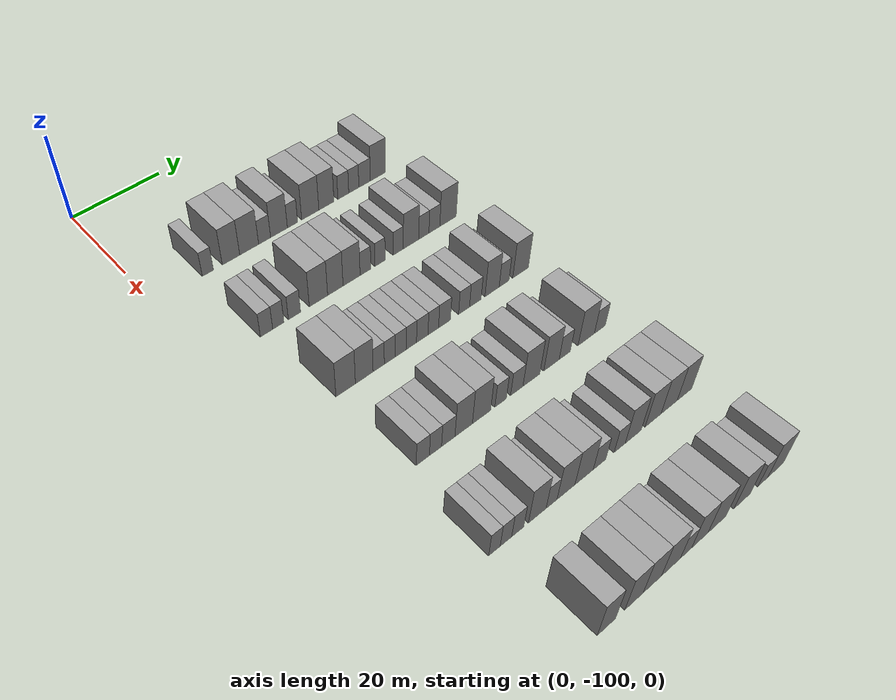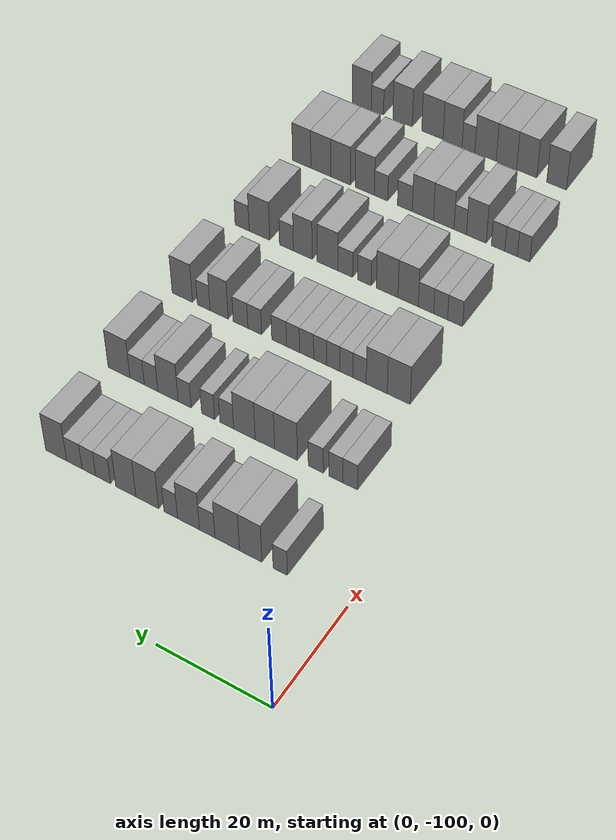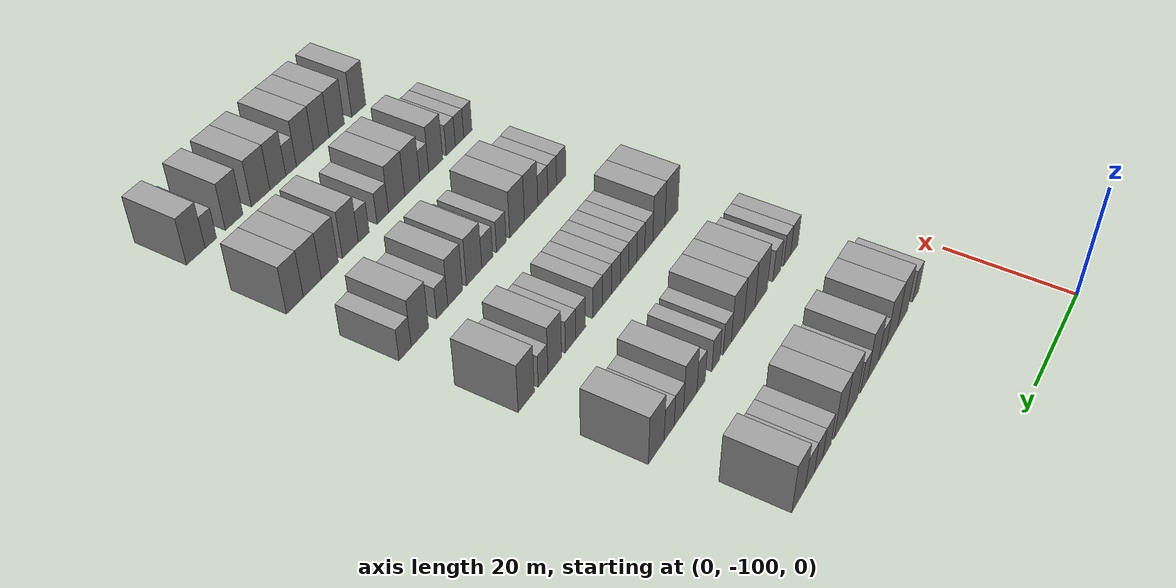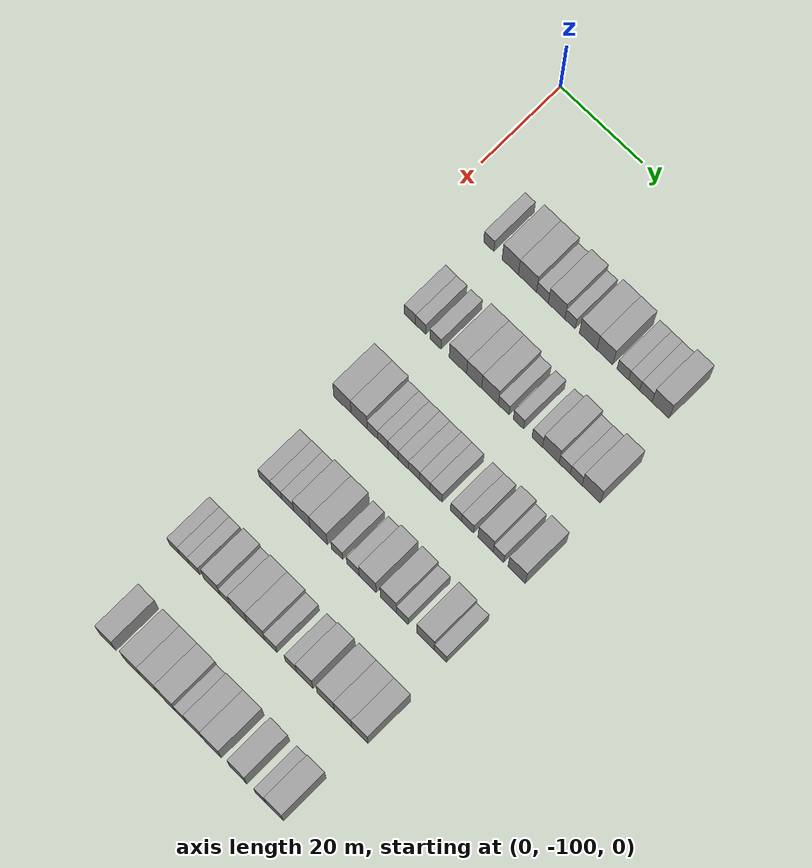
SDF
<sdf version="1.6">
 <world name="default">
  <model name="building_59">
   <static>1</static>
   <pose>25.0000 -88.2660 0 0.000000 0.000000 0.000000</pose>
   <link name="link">
    <pose>0 0 3.00 0 0 0</pose>
    <collision name="collision"><geometry><box><size>10.0000 2.4998 6.0000</size></box></geometry></collision>
    <visual name="visual">
     <cast_shadows>0</cast_shadows>
     <geometry><box><size>10.0000 2.4998 6.0000</size></box></geometry>
     <material>
      <script>
       <uri>model://grey_wall/materials/scripts</uri>
       <uri>model://grey_wall/materials/textures</uri>
       <name>vrc/grey_wall</name>
      </script>
     </material>
    </visual>
   </link>
  </model>
  <model name="building_60">
   <static>1</static>
   <pose>25.0000 -83.0185 0 0.000000 0.000000 0.000000</pose>
   <link name="link">
    <pose>0 0 4.50 0 0 0</pose>
    <collision name="collision"><geometry><box><size>10.0000 3.9951 9.0000</size></box></geometry></collision>
    <visual name="visual">
     <cast_shadows>0</cast_shadows>
     <geometry><box><size>10.0000 3.9951 9.0000</size></box></geometry>
     <material>
      <script>
       <uri>model://grey_wall/materials/scripts</uri>
       <uri>model://grey_wall/materials/textures</uri>
       <name>vrc/grey_wall</name>
      </script>
     </material>
    </visual>
   </link>
  </model>
  <model name="building_61">
   <static>1</static>
   <pose>25.0000 -78.8180 0 0.000000 0.000000 0.000000</pose>
   <link name="link">
    <pose>0 0 4.50 0 0 0</pose>
    <collision name="collision"><geometry><box><size>10.0000 4.4060 9.0000</size></box></geometry></collision>
    <visual name="visual">
     <cast_shadows>0</cast_shadows>
     <geometry><box><size>10.0000 4.4060 9.0000</size></box></geometry>
     <material>
      <script>
       <uri>model://grey_wall/materials/scripts</uri>
       <uri>model://grey_wall/materials/textures</uri>
       <name>vrc/grey_wall</name>
      </script>
     </material>
    </visual>
   </link>
  </model>
  <model name="building_62">
   <static>1</static>
   <pose>25.0000 -75.1995 0 0.000000 0.000000 0.000000</pose>
   <link name="link">
    <pose>0 0 3.00 0 0 0</pose>
    <collision name="collision"><geometry><box><size>10.0000 2.8310 6.0000</size></box></geometry></collision>
    <visual name="visual">
     <cast_shadows>0</cast_shadows>
     <geometry><box><size>10.0000 2.8310 6.0000</size></box></geometry>
     <material>
      <script>
       <uri>model://grey_wall/materials/scripts</uri>
       <uri>model://grey_wall/materials/textures</uri>
       <name>vrc/grey_wall</name>
      </script>
     </material>
    </visual>
   </link>
  </model>
  <model name="building_63">
   <static>1</static>
   <pose>25.0000 -71.7658 0 0.000000 0.000000 0.000000</pose>
   <link name="link">
    <pose>0 0 4.50 0 0 0</pose>
    <collision name="collision"><geometry><box><size>10.0000 4.0365 9.0000</size></box></geometry></collision>
    <visual name="visual">
     <cast_shadows>0</cast_shadows>
     <geometry><box><size>10.0000 4.0365 9.0000</size></box></geometry>
     <material>
      <script>
       <uri>model://grey_wall/materials/scripts</uri>
       <uri>model://grey_wall/materials/textures</uri>
       <name>vrc/grey_wall</name>
      </script>
     </material>
    </visual>
   </link>
  </model>
  <model name="building_64">
   <static>1</static>
   <pose>25.0000 -68.5009 0 0.000000 0.000000 0.000000</pose>
   <link name="link">
    <pose>0 0 3.00 0 0 0</pose>
    <collision name="collision"><geometry><box><size>10.0000 2.4933 6.0000</size></box></geometry></collision>
    <visual name="visual">
     <cast_shadows>0</cast_shadows>
     <geometry><box><size>10.0000 2.4933 6.0000</size></box></geometry>
     <material>
      <script>
       <uri>model://grey_wall/materials/scripts</uri>
       <uri>model://grey_wall/materials/textures</uri>
       <name>vrc/grey_wall</name>
      </script>
     </material>
    </visual>
   </link>
  </model>
  <model name="building_65">
   <static>1</static>
   <pose>25.0000 -64.1254 0 0.000000 0.000000 0.000000</pose>
   <link name="link">
    <pose>0 0 4.50 0 0 0</pose>
    <collision name="collision"><geometry><box><size>10.0000 4.2577 9.0000</size></box></geometry></collision>
    <visual name="visual">
     <cast_shadows>0</cast_shadows>
     <geometry><box><size>10.0000 4.2577 9.0000</size></box></geometry>
     <material>
      <script>
       <uri>model://grey_wall/materials/scripts</uri>
       <uri>model://grey_wall/materials/textures</uri>
       <name>vrc/grey_wall</name>
      </script>
     </material>
    </visual>
   </link>
  </model>
  <model name="building_66">
   <static>1</static>
   <pose>25.0000 -60.0883 0 0.000000 0.000000 0.000000</pose>
   <link name="link">
    <pose>0 0 4.50 0 0 0</pose>
    <collision name="collision"><geometry><box><size>10.0000 3.8163 9.0000</size></box></geometry></collision>
    <visual name="visual">
     <cast_shadows>0</cast_shadows>
     <geometry><box><size>10.0000 3.8163 9.0000</size></box></geometry>
     <material>
      <script>
       <uri>model://grey_wall/materials/scripts</uri>
       <uri>model://grey_wall/materials/textures</uri>
       <name>vrc/grey_wall</name>
      </script>
     </material>
    </visual>
   </link>
  </model>
  <model name="building_67">
   <static>1</static>
   <pose>25.0000 -55.7863 0 0.000000 0.000000 0.000000</pose>
   <link name="link">
    <pose>0 0 3.00 0 0 0</pose>
    <collision name="collision"><geometry><box><size>10.0000 2.7878 6.0000</size></box></geometry></collision>
    <visual name="visual">
     <cast_shadows>0</cast_shadows>
     <geometry><box><size>10.0000 2.7878 6.0000</size></box></geometry>
     <material>
      <script>
       <uri>model://grey_wall/materials/scripts</uri>
       <uri>model://grey_wall/materials/textures</uri>
       <name>vrc/grey_wall</name>
      </script>
     </material>
    </visual>
   </link>
  </model>
  <model name="building_68">
   <static>1</static>
   <pose>25.0000 -53.0809 0 0.000000 0.000000 0.000000</pose>
   <link name="link">
    <pose>0 0 3.00 0 0 0</pose>
    <collision name="collision"><geometry><box><size>10.0000 2.6230 6.0000</size></box></geometry></collision>
    <visual name="visual">
     <cast_shadows>0</cast_shadows>
     <geometry><box><size>10.0000 2.6230 6.0000</size></box></geometry>
     <material>
      <script>
       <uri>model://grey_wall/materials/scripts</uri>
       <uri>model://grey_wall/materials/textures</uri>
       <name>vrc/grey_wall</name>
      </script>
     </material>
    </visual>
   </link>
  </model>
  <model name="building_69">
   <static>1</static>
   <pose>25.0000 -50.2747 0 0.000000 0.000000 0.000000</pose>
   <link name="link">
    <pose>0 0 3.00 0 0 0</pose>
    <collision name="collision"><geometry><box><size>10.0000 2.9894 6.0000</size></box></geometry></collision>
    <visual name="visual">
     <cast_shadows>0</cast_shadows>
     <geometry><box><size>10.0000 2.9894 6.0000</size></box></geometry>
     <material>
      <script>
       <uri>model://grey_wall/materials/scripts</uri>
       <uri>model://grey_wall/materials/textures</uri>
       <name>vrc/grey_wall</name>
      </script>
     </material>
    </visual>
   </link>
  </model>
  <model name="building_70">
   <static>1</static>
   <pose>25.0000 -46.7468 0 0.000000 0.000000 0.000000</pose>
   <link name="link">
    <pose>0 0 4.50 0 0 0</pose>
    <collision name="collision"><geometry><box><size>10.0000 4.0664 9.0000</size></box></geometry></collision>
    <visual name="visual">
     <cast_shadows>0</cast_shadows>
     <geometry><box><size>10.0000 4.0664 9.0000</size></box></geometry>
     <material>
      <script>
       <uri>model://grey_wall/materials/scripts</uri>
       <uri>model://grey_wall/materials/textures</uri>
       <name>vrc/grey_wall</name>
      </script>
     </material>
    </visual>
   </link>
  </model>
  <model name="building_244">
   <static>1</static>
   <pose>44.0000 -88.6784 0 0.000000 0.000000 0.000000</pose>
   <link name="link">
    <pose>0 0 3.00 0 0 0</pose>
    <collision name="collision"><geometry><box><size>10.0000 2.7074 6.0000</size></box></geometry></collision>
    <visual name="visual">
     <cast_shadows>0</cast_shadows>
     <geometry><box><size>10.0000 2.7074 6.0000</size></box></geometry>
     <material>
      <script>
       <uri>model://grey_wall/materials/scripts</uri>
       <uri>model://grey_wall/materials/textures</uri>
       <name>vrc/grey_wall</name>
      </script>
     </material>
    </visual>
   </link>
  </model>
  <model name="building_245">
   <static>1</static>
   <pose>44.0000 -86.0843 0 0.000000 0.000000 0.000000</pose>
   <link name="link">
    <pose>0 0 3.00 0 0 0</pose>
    <collision name="collision"><geometry><box><size>10.0000 2.4808 6.0000</size></box></geometry></collision>
    <visual name="visual">
     <cast_shadows>0</cast_shadows>
     <geometry><box><size>10.0000 2.4808 6.0000</size></box></geometry>
     <material>
      <script>
       <uri>model://grey_wall/materials/scripts</uri>
       <uri>model://grey_wall/materials/textures</uri>
       <name>vrc/grey_wall</name>
      </script>
     </material>
    </visual>
   </link>
  </model>
  <model name="building_246">
   <static>1</static>
   <pose>44.0000 -82.4727 0 0.000000 0.000000 0.000000</pose>
   <link name="link">
    <pose>0 0 3.00 0 0 0</pose>
    <collision name="collision"><geometry><box><size>10.0000 2.7424 6.0000</size></box></geometry></collision>
    <visual name="visual">
     <cast_shadows>0</cast_shadows>
     <geometry><box><size>10.0000 2.7424 6.0000</size></box></geometry>
     <material>
      <script>
       <uri>model://grey_wall/materials/scripts</uri>
       <uri>model://grey_wall/materials/textures</uri>
       <name>vrc/grey_wall</name>
      </script>
     </material>
    </visual>
   </link>
  </model>
  <model name="building_247">
   <static>1</static>
   <pose>44.0000 -76.9867 0 0.000000 0.000000 0.000000</pose>
   <link name="link">
    <pose>0 0 4.50 0 0 0</pose>
    <collision name="collision"><geometry><box><size>10.0000 4.2298 9.0000</size></box></geometry></collision>
    <visual name="visual">
     <cast_shadows>0</cast_shadows>
     <geometry><box><size>10.0000 4.2298 9.0000</size></box></geometry>
     <material>
      <script>
       <uri>model://grey_wall/materials/scripts</uri>
       <uri>model://grey_wall/materials/textures</uri>
       <name>vrc/grey_wall</name>
      </script>
     </material>
    </visual>
   </link>
  </model>
  <model name="building_248">
   <static>1</static>
   <pose>44.0000 -73.0614 0 0.000000 0.000000 0.000000</pose>
   <link name="link">
    <pose>0 0 4.50 0 0 0</pose>
    <collision name="collision"><geometry><box><size>10.0000 3.6208 9.0000</size></box></geometry></collision>
    <visual name="visual">
     <cast_shadows>0</cast_shadows>
     <geometry><box><size>10.0000 3.6208 9.0000</size></box></geometry>
     <material>
      <script>
       <uri>model://grey_wall/materials/scripts</uri>
       <uri>model://grey_wall/materials/textures</uri>
       <name>vrc/grey_wall</name>
      </script>
     </material>
    </visual>
   </link>
  </model>
  <model name="building_249">
   <static>1</static>
   <pose>44.0000 -69.2176 0 0.000000 0.000000 0.000000</pose>
   <link name="link">
    <pose>0 0 4.50 0 0 0</pose>
    <collision name="collision"><geometry><box><size>10.0000 4.0668 9.0000</size></box></geometry></collision>
    <visual name="visual">
     <cast_shadows>0</cast_shadows>
     <geometry><box><size>10.0000 4.0668 9.0000</size></box></geometry>
     <material>
      <script>
       <uri>model://grey_wall/materials/scripts</uri>
       <uri>model://grey_wall/materials/textures</uri>
       <name>vrc/grey_wall</name>
      </script>
     </material>
    </visual>
   </link>
  </model>
  <model name="building_250">
   <static>1</static>
   <pose>44.0000 -65.8852 0 0.000000 0.000000 0.000000</pose>
   <link name="link">
    <pose>0 0 3.00 0 0 0</pose>
    <collision name="collision"><geometry><box><size>10.0000 2.5979 6.0000</size></box></geometry></collision>
    <visual name="visual">
     <cast_shadows>0</cast_shadows>
     <geometry><box><size>10.0000 2.5979 6.0000</size></box></geometry>
     <material>
      <script>
       <uri>model://grey_wall/materials/scripts</uri>
       <uri>model://grey_wall/materials/textures</uri>
       <name>vrc/grey_wall</name>
      </script>
     </material>
    </visual>
   </link>
  </model>
  <model name="building_251">
   <static>1</static>
   <pose>44.0000 -62.3302 0 0.000000 0.000000 0.000000</pose>
   <link name="link">
    <pose>0 0 3.00 0 0 0</pose>
    <collision name="collision"><geometry><box><size>10.0000 2.5119 6.0000</size></box></geometry></collision>
    <visual name="visual">
     <cast_shadows>0</cast_shadows>
     <geometry><box><size>10.0000 2.5119 6.0000</size></box></geometry>
     <material>
      <script>
       <uri>model://grey_wall/materials/scripts</uri>
       <uri>model://grey_wall/materials/textures</uri>
       <name>vrc/grey_wall</name>
      </script>
     </material>
    </visual>
   </link>
  </model>
  <model name="building_252">
   <static>1</static>
   <pose>44.0000 -57.8119 0 0.000000 0.000000 0.000000</pose>
   <link name="link">
    <pose>0 0 3.00 0 0 0</pose>
    <collision name="collision"><geometry><box><size>10.0000 2.5248 6.0000</size></box></geometry></collision>
    <visual name="visual">
     <cast_shadows>0</cast_shadows>
     <geometry><box><size>10.0000 2.5248 6.0000</size></box></geometry>
     <material>
      <script>
       <uri>model://grey_wall/materials/scripts</uri>
       <uri>model://grey_wall/materials/textures</uri>
       <name>vrc/grey_wall</name>
      </script>
     </material>
    </visual>
   </link>
  </model>
  <model name="building_253">
   <static>1</static>
   <pose>44.0000 -54.5671 0 0.000000 0.000000 0.000000</pose>
   <link name="link">
    <pose>0 0 4.50 0 0 0</pose>
    <collision name="collision"><geometry><box><size>10.0000 3.9647 9.0000</size></box></geometry></collision>
    <visual name="visual">
     <cast_shadows>0</cast_shadows>
     <geometry><box><size>10.0000 3.9647 9.0000</size></box></geometry>
     <material>
      <script>
       <uri>model://grey_wall/materials/scripts</uri>
       <uri>model://grey_wall/materials/textures</uri>
       <name>vrc/grey_wall</name>
      </script>
     </material>
    </visual>
   </link>
  </model>
  <model name="building_254">
   <static>1</static>
   <pose>44.0000 -51.2525 0 0.000000 0.000000 0.000000</pose>
   <link name="link">
    <pose>0 0 3.00 0 0 0</pose>
    <collision name="collision"><geometry><box><size>10.0000 2.6645 6.0000</size></box></geometry></collision>
    <visual name="visual">
     <cast_shadows>0</cast_shadows>
     <geometry><box><size>10.0000 2.6645 6.0000</size></box></geometry>
     <material>
      <script>
       <uri>model://grey_wall/materials/scripts</uri>
       <uri>model://grey_wall/materials/textures</uri>
       <name>vrc/grey_wall</name>
      </script>
     </material>
    </visual>
   </link>
  </model>
  <model name="building_255">
   <static>1</static>
   <pose>44.0000 -48.4987 0 0.000000 0.000000 0.000000</pose>
   <link name="link">
    <pose>0 0 3.00 0 0 0</pose>
    <collision name="collision"><geometry><box><size>10.0000 2.8431 6.0000</size></box></geometry></collision>
    <visual name="visual">
     <cast_shadows>0</cast_shadows>
     <geometry><box><size>10.0000 2.8431 6.0000</size></box></geometry>
     <material>
      <script>
       <uri>model://grey_wall/materials/scripts</uri>
       <uri>model://grey_wall/materials/textures</uri>
       <name>vrc/grey_wall</name>
      </script>
     </material>
    </visual>
   </link>
  </model>
  <model name="building_256">
   <static>1</static>
   <pose>44.0000 -44.9045 0 0.000000 0.000000 0.000000</pose>
   <link name="link">
    <pose>0 0 4.50 0 0 0</pose>
    <collision name="collision"><geometry><box><size>10.0000 4.3453 9.0000</size></box></geometry></collision>
    <visual name="visual">
     <cast_shadows>0</cast_shadows>
     <geometry><box><size>10.0000 4.3453 9.0000</size></box></geometry>
     <material>
      <script>
       <uri>model://grey_wall/materials/scripts</uri>
       <uri>model://grey_wall/materials/textures</uri>
       <name>vrc/grey_wall</name>
      </script>
     </material>
    </visual>
   </link>
  </model>
  <model name="building_405">
   <static>1</static>
   <pose>63.0000 -86.0707 0 0.000000 0.000000 0.000000</pose>
   <link name="link">
    <pose>0 0 4.50 0 0 0</pose>
    <collision name="collision"><geometry><box><size>10.0000 4.2426 9.0000</size></box></geometry></collision>
    <visual name="visual">
     <cast_shadows>0</cast_shadows>
     <geometry><box><size>10.0000 4.2426 9.0000</size></box></geometry>
     <material>
      <script>
       <uri>model://grey_wall/materials/scripts</uri>
       <uri>model://grey_wall/materials/textures</uri>
       <name>vrc/grey_wall</name>
      </script>
     </material>
    </visual>
   </link>
  </model>
  <model name="building_406">
   <static>1</static>
   <pose>63.0000 -81.9878 0 0.000000 0.000000 0.000000</pose>
   <link name="link">
    <pose>0 0 4.50 0 0 0</pose>
    <collision name="collision"><geometry><box><size>10.0000 3.9231 9.0000</size></box></geometry></collision>
    <visual name="visual">
     <cast_shadows>0</cast_shadows>
     <geometry><box><size>10.0000 3.9231 9.0000</size></box></geometry>
     <material>
      <script>
       <uri>model://grey_wall/materials/scripts</uri>
       <uri>model://grey_wall/materials/textures</uri>
       <name>vrc/grey_wall</name>
      </script>
     </material>
    </visual>
   </link>
  </model>
  <model name="building_407">
   <static>1</static>
   <pose>63.0000 -78.7579 0 0.000000 0.000000 0.000000</pose>
   <link name="link">
    <pose>0 0 3.00 0 0 0</pose>
    <collision name="collision"><geometry><box><size>10.0000 2.5367 6.0000</size></box></geometry></collision>
    <visual name="visual">
     <cast_shadows>0</cast_shadows>
     <geometry><box><size>10.0000 2.5367 6.0000</size></box></geometry>
     <material>
      <script>
       <uri>model://grey_wall/materials/scripts</uri>
       <uri>model://grey_wall/materials/textures</uri>
       <name>vrc/grey_wall</name>
      </script>
     </material>
    </visual>
   </link>
  </model>
  <model name="building_408">
   <static>1</static>
   <pose>63.0000 -76.2513 0 0.000000 0.000000 0.000000</pose>
   <link name="link">
    <pose>0 0 3.00 0 0 0</pose>
    <collision name="collision"><geometry><box><size>10.0000 2.4766 6.0000</size></box></geometry></collision>
    <visual name="visual">
     <cast_shadows>0</cast_shadows>
     <geometry><box><size>10.0000 2.4766 6.0000</size></box></geometry>
     <material>
      <script>
       <uri>model://grey_wall/materials/scripts</uri>
       <uri>model://grey_wall/materials/textures</uri>
       <name>vrc/grey_wall</name>
      </script>
     </material>
    </visual>
   </link>
  </model>
  <model name="building_409">
   <static>1</static>
   <pose>63.0000 -73.7528 0 0.000000 0.000000 0.000000</pose>
   <link name="link">
    <pose>0 0 3.00 0 0 0</pose>
    <collision name="collision"><geometry><box><size>10.0000 2.5205 6.0000</size></box></geometry></collision>
    <visual name="visual">
     <cast_shadows>0</cast_shadows>
     <geometry><box><size>10.0000 2.5205 6.0000</size></box></geometry>
     <material>
      <script>
       <uri>model://grey_wall/materials/scripts</uri>
       <uri>model://grey_wall/materials/textures</uri>
       <name>vrc/grey_wall</name>
      </script>
     </material>
    </visual>
   </link>
  </model>
  <model name="building_410">
   <static>1</static>
   <pose>63.0000 -71.2757 0 0.000000 0.000000 0.000000</pose>
   <link name="link">
    <pose>0 0 3.00 0 0 0</pose>
    <collision name="collision"><geometry><box><size>10.0000 2.4337 6.0000</size></box></geometry></collision>
    <visual name="visual">
     <cast_shadows>0</cast_shadows>
     <geometry><box><size>10.0000 2.4337 6.0000</size></box></geometry>
     <material>
      <script>
       <uri>model://grey_wall/materials/scripts</uri>
       <uri>model://grey_wall/materials/textures</uri>
       <name>vrc/grey_wall</name>
      </script>
     </material>
    </visual>
   </link>
  </model>
  <model name="building_411">
   <static>1</static>
   <pose>63.0000 -68.6984 0 0.000000 0.000000 0.000000</pose>
   <link name="link">
    <pose>0 0 3.00 0 0 0</pose>
    <collision name="collision"><geometry><box><size>10.0000 2.7208 6.0000</size></box></geometry></collision>
    <visual name="visual">
     <cast_shadows>0</cast_shadows>
     <geometry><box><size>10.0000 2.7208 6.0000</size></box></geometry>
     <material>
      <script>
       <uri>model://grey_wall/materials/scripts</uri>
       <uri>model://grey_wall/materials/textures</uri>
       <name>vrc/grey_wall</name>
      </script>
     </material>
    </visual>
   </link>
  </model>
  <model name="building_412">
   <static>1</static>
   <pose>63.0000 -66.0656 0 0.000000 0.000000 0.000000</pose>
   <link name="link">
    <pose>0 0 3.00 0 0 0</pose>
    <collision name="collision"><geometry><box><size>10.0000 2.5450 6.0000</size></box></geometry></collision>
    <visual name="visual">
     <cast_shadows>0</cast_shadows>
     <geometry><box><size>10.0000 2.5450 6.0000</size></box></geometry>
     <material>
      <script>
       <uri>model://grey_wall/materials/scripts</uri>
       <uri>model://grey_wall/materials/textures</uri>
       <name>vrc/grey_wall</name>
      </script>
     </material>
    </visual>
   </link>
  </model>
  <model name="building_413">
   <static>1</static>
   <pose>63.0000 -63.3538 0 0.000000 0.000000 0.000000</pose>
   <link name="link">
    <pose>0 0 3.00 0 0 0</pose>
    <collision name="collision"><geometry><box><size>10.0000 2.8786 6.0000</size></box></geometry></collision>
    <visual name="visual">
     <cast_shadows>0</cast_shadows>
     <geometry><box><size>10.0000 2.8786 6.0000</size></box></geometry>
     <material>
      <script>
       <uri>model://grey_wall/materials/scripts</uri>
       <uri>model://grey_wall/materials/textures</uri>
       <name>vrc/grey_wall</name>
      </script>
     </material>
    </visual>
   </link>
  </model>
  <model name="building_414">
   <static>1</static>
   <pose>63.0000 -58.5616 0 0.000000 0.000000 0.000000</pose>
   <link name="link">
    <pose>0 0 3.00 0 0 0</pose>
    <collision name="collision"><geometry><box><size>10.0000 2.7057 6.0000</size></box></geometry></collision>
    <visual name="visual">
     <cast_shadows>0</cast_shadows>
     <geometry><box><size>10.0000 2.7057 6.0000</size></box></geometry>
     <material>
      <script>
       <uri>model://grey_wall/materials/scripts</uri>
       <uri>model://grey_wall/materials/textures</uri>
       <name>vrc/grey_wall</name>
      </script>
     </material>
    </visual>
   </link>
  </model>
  <model name="building_415">
   <static>1</static>
   <pose>63.0000 -55.7594 0 0.000000 0.000000 0.000000</pose>
   <link name="link">
    <pose>0 0 3.00 0 0 0</pose>
    <collision name="collision"><geometry><box><size>10.0000 2.8986 6.0000</size></box></geometry></collision>
    <visual name="visual">
     <cast_shadows>0</cast_shadows>
     <geometry><box><size>10.0000 2.8986 6.0000</size></box></geometry>
     <material>
      <script>
       <uri>model://grey_wall/materials/scripts</uri>
       <uri>model://grey_wall/materials/textures</uri>
       <name>vrc/grey_wall</name>
      </script>
     </material>
    </visual>
   </link>
  </model>
  <model name="building_416">
   <static>1</static>
   <pose>63.0000 -51.4938 0 0.000000 0.000000 0.000000</pose>
   <link name="link">
    <pose>0 0 4.50 0 0 0</pose>
    <collision name="collision"><geometry><box><size>10.0000 3.6326 9.0000</size></box></geometry></collision>
    <visual name="visual">
     <cast_shadows>0</cast_shadows>
     <geometry><box><size>10.0000 3.6326 9.0000</size></box></geometry>
     <material>
      <script>
       <uri>model://grey_wall/materials/scripts</uri>
       <uri>model://grey_wall/materials/textures</uri>
       <name>vrc/grey_wall</name>
      </script>
     </material>
    </visual>
   </link>
  </model>
  <model name="building_417">
   <static>1</static>
   <pose>63.0000 -48.4017 0 0.000000 0.000000 0.000000</pose>
   <link name="link">
    <pose>0 0 3.00 0 0 0</pose>
    <collision name="collision"><geometry><box><size>10.0000 2.5516 6.0000</size></box></geometry></collision>
    <visual name="visual">
     <cast_shadows>0</cast_shadows>
     <geometry><box><size>10.0000 2.5516 6.0000</size></box></geometry>
     <material>
      <script>
       <uri>model://grey_wall/materials/scripts</uri>
       <uri>model://grey_wall/materials/textures</uri>
       <name>vrc/grey_wall</name>
      </script>
     </material>
    </visual>
   </link>
  </model>
  <model name="building_418">
   <static>1</static>
   <pose>63.0000 -44.0660 0 0.000000 0.000000 0.000000</pose>
   <link name="link">
    <pose>0 0 4.50 0 0 0</pose>
    <collision name="collision"><geometry><box><size>10.0000 4.1199 9.0000</size></box></geometry></collision>
    <visual name="visual">
     <cast_shadows>0</cast_shadows>
     <geometry><box><size>10.0000 4.1199 9.0000</size></box></geometry>
     <material>
      <script>
       <uri>model://grey_wall/materials/scripts</uri>
       <uri>model://grey_wall/materials/textures</uri>
       <name>vrc/grey_wall</name>
      </script>
     </material>
    </visual>
   </link>
  </model>
  <model name="building_590">
   <static>1</static>
   <pose>82.0000 -85.6109 0 0.000000 0.000000 0.000000</pose>
   <link name="link">
    <pose>0 0 3.00 0 0 0</pose>
    <collision name="collision"><geometry><box><size>10.0000 2.8524 6.0000</size></box></geometry></collision>
    <visual name="visual">
     <cast_shadows>0</cast_shadows>
     <geometry><box><size>10.0000 2.8524 6.0000</size></box></geometry>
     <material>
      <script>
       <uri>model://grey_wall/materials/scripts</uri>
       <uri>model://grey_wall/materials/textures</uri>
       <name>vrc/grey_wall</name>
      </script>
     </material>
    </visual>
   </link>
  </model>
  <model name="building_591">
   <static>1</static>
   <pose>82.0000 -82.8670 0 0.000000 0.000000 0.000000</pose>
   <link name="link">
    <pose>0 0 3.00 0 0 0</pose>
    <collision name="collision"><geometry><box><size>10.0000 2.6353 6.0000</size></box></geometry></collision>
    <visual name="visual">
     <cast_shadows>0</cast_shadows>
     <geometry><box><size>10.0000 2.6353 6.0000</size></box></geometry>
     <material>
      <script>
       <uri>model://grey_wall/materials/scripts</uri>
       <uri>model://grey_wall/materials/textures</uri>
       <name>vrc/grey_wall</name>
      </script>
     </material>
    </visual>
   </link>
  </model>
  <model name="building_592">
   <static>1</static>
   <pose>82.0000 -80.0675 0 0.000000 0.000000 0.000000</pose>
   <link name="link">
    <pose>0 0 3.00 0 0 0</pose>
    <collision name="collision"><geometry><box><size>10.0000 2.9636 6.0000</size></box></geometry></collision>
    <visual name="visual">
     <cast_shadows>0</cast_shadows>
     <geometry><box><size>10.0000 2.9636 6.0000</size></box></geometry>
     <material>
      <script>
       <uri>model://grey_wall/materials/scripts</uri>
       <uri>model://grey_wall/materials/textures</uri>
       <name>vrc/grey_wall</name>
      </script>
     </material>
    </visual>
   </link>
  </model>
  <model name="building_593">
   <static>1</static>
   <pose>82.0000 -76.6243 0 0.000000 0.000000 0.000000</pose>
   <link name="link">
    <pose>0 0 4.50 0 0 0</pose>
    <collision name="collision"><geometry><box><size>10.0000 3.9227 9.0000</size></box></geometry></collision>
    <visual name="visual">
     <cast_shadows>0</cast_shadows>
     <geometry><box><size>10.0000 3.9227 9.0000</size></box></geometry>
     <material>
      <script>
       <uri>model://grey_wall/materials/scripts</uri>
       <uri>model://grey_wall/materials/textures</uri>
       <name>vrc/grey_wall</name>
      </script>
     </material>
    </visual>
   </link>
  </model>
  <model name="building_594">
   <static>1</static>
   <pose>82.0000 -72.5664 0 0.000000 0.000000 0.000000</pose>
   <link name="link">
    <pose>0 0 4.50 0 0 0</pose>
    <collision name="collision"><geometry><box><size>10.0000 4.1932 9.0000</size></box></geometry></collision>
    <visual name="visual">
     <cast_shadows>0</cast_shadows>
     <geometry><box><size>10.0000 4.1932 9.0000</size></box></geometry>
     <material>
      <script>
       <uri>model://grey_wall/materials/scripts</uri>
       <uri>model://grey_wall/materials/textures</uri>
       <name>vrc/grey_wall</name>
      </script>
     </material>
    </visual>
   </link>
  </model>
  <model name="building_595">
   <static>1</static>
   <pose>82.0000 -68.1193 0 0.000000 0.000000 0.000000</pose>
   <link name="link">
    <pose>0 0 3.00 0 0 0</pose>
    <collision name="collision"><geometry><box><size>10.0000 2.7010 6.0000</size></box></geometry></collision>
    <visual name="visual">
     <cast_shadows>0</cast_shadows>
     <geometry><box><size>10.0000 2.7010 6.0000</size></box></geometry>
     <material>
      <script>
       <uri>model://grey_wall/materials/scripts</uri>
       <uri>model://grey_wall/materials/textures</uri>
       <name>vrc/grey_wall</name>
      </script>
     </material>
    </visual>
   </link>
  </model>
  <model name="building_596">
   <static>1</static>
   <pose>82.0000 -64.2862 0 0.000000 0.000000 0.000000</pose>
   <link name="link">
    <pose>0 0 3.00 0 0 0</pose>
    <collision name="collision"><geometry><box><size>10.0000 2.9650 6.0000</size></box></geometry></collision>
    <visual name="visual">
     <cast_shadows>0</cast_shadows>
     <geometry><box><size>10.0000 2.9650 6.0000</size></box></geometry>
     <material>
      <script>
       <uri>model://grey_wall/materials/scripts</uri>
       <uri>model://grey_wall/materials/textures</uri>
       <name>vrc/grey_wall</name>
      </script>
     </material>
    </visual>
   </link>
  </model>
  <model name="building_597">
   <static>1</static>
   <pose>82.0000 -60.7587 0 0.000000 0.000000 0.000000</pose>
   <link name="link">
    <pose>0 0 4.50 0 0 0</pose>
    <collision name="collision"><geometry><box><size>10.0000 4.0901 9.0000</size></box></geometry></collision>
    <visual name="visual">
     <cast_shadows>0</cast_shadows>
     <geometry><box><size>10.0000 4.0901 9.0000</size></box></geometry>
     <material>
      <script>
       <uri>model://grey_wall/materials/scripts</uri>
       <uri>model://grey_wall/materials/textures</uri>
       <name>vrc/grey_wall</name>
      </script>
     </material>
    </visual>
   </link>
  </model>
  <model name="building_598">
   <static>1</static>
   <pose>82.0000 -55.8062 0 0.000000 0.000000 0.000000</pose>
   <link name="link">
    <pose>0 0 4.50 0 0 0</pose>
    <collision name="collision"><geometry><box><size>10.0000 3.8148 9.0000</size></box></geometry></collision>
    <visual name="visual">
     <cast_shadows>0</cast_shadows>
     <geometry><box><size>10.0000 3.8148 9.0000</size></box></geometry>
     <material>
      <script>
       <uri>model://grey_wall/materials/scripts</uri>
       <uri>model://grey_wall/materials/textures</uri>
       <name>vrc/grey_wall</name>
      </script>
     </material>
    </visual>
   </link>
  </model>
  <model name="building_599">
   <static>1</static>
   <pose>82.0000 -52.4853 0 0.000000 0.000000 0.000000</pose>
   <link name="link">
    <pose>0 0 3.00 0 0 0</pose>
    <collision name="collision"><geometry><box><size>10.0000 2.8270 6.0000</size></box></geometry></collision>
    <visual name="visual">
     <cast_shadows>0</cast_shadows>
     <geometry><box><size>10.0000 2.8270 6.0000</size></box></geometry>
     <material>
      <script>
       <uri>model://grey_wall/materials/scripts</uri>
       <uri>model://grey_wall/materials/textures</uri>
       <name>vrc/grey_wall</name>
      </script>
     </material>
    </visual>
   </link>
  </model>
  <model name="building_600">
   <static>1</static>
   <pose>82.0000 -46.9468 0 0.000000 0.000000 0.000000</pose>
   <link name="link">
    <pose>0 0 4.50 0 0 0</pose>
    <collision name="collision"><geometry><box><size>10.0000 4.2500 9.0000</size></box></geometry></collision>
    <visual name="visual">
     <cast_shadows>0</cast_shadows>
     <geometry><box><size>10.0000 4.2500 9.0000</size></box></geometry>
     <material>
      <script>
       <uri>model://grey_wall/materials/scripts</uri>
       <uri>model://grey_wall/materials/textures</uri>
       <name>vrc/grey_wall</name>
      </script>
     </material>
    </visual>
   </link>
  </model>
  <model name="building_601">
   <static>1</static>
   <pose>82.0000 -43.3713 0 0.000000 0.000000 0.000000</pose>
   <link name="link">
    <pose>0 0 3.00 0 0 0</pose>
    <collision name="collision"><geometry><box><size>10.0000 2.9010 6.0000</size></box></geometry></collision>
    <visual name="visual">
     <cast_shadows>0</cast_shadows>
     <geometry><box><size>10.0000 2.9010 6.0000</size></box></geometry>
     <material>
      <script>
       <uri>model://grey_wall/materials/scripts</uri>
       <uri>model://grey_wall/materials/textures</uri>
       <name>vrc/grey_wall</name>
      </script>
     </material>
    </visual>
   </link>
  </model>
  <model name="building_761">
   <static>1</static>
   <pose>101.0000 -88.2274 0 0.000000 0.000000 0.000000</pose>
   <link name="link">
    <pose>0 0 3.00 0 0 0</pose>
    <collision name="collision"><geometry><box><size>10.0000 2.4112 6.0000</size></box></geometry></collision>
    <visual name="visual">
     <cast_shadows>0</cast_shadows>
     <geometry><box><size>10.0000 2.4112 6.0000</size></box></geometry>
     <material>
      <script>
       <uri>model://grey_wall/materials/scripts</uri>
       <uri>model://grey_wall/materials/textures</uri>
       <name>vrc/grey_wall</name>
      </script>
     </material>
    </visual>
   </link>
  </model>
  <model name="building_762">
   <static>1</static>
   <pose>101.0000 -85.8109 0 0.000000 0.000000 0.000000</pose>
   <link name="link">
    <pose>0 0 3.00 0 0 0</pose>
    <collision name="collision"><geometry><box><size>10.0000 2.4219 6.0000</size></box></geometry></collision>
    <visual name="visual">
     <cast_shadows>0</cast_shadows>
     <geometry><box><size>10.0000 2.4219 6.0000</size></box></geometry>
     <material>
      <script>
       <uri>model://grey_wall/materials/scripts</uri>
       <uri>model://grey_wall/materials/textures</uri>
       <name>vrc/grey_wall</name>
      </script>
     </material>
    </visual>
   </link>
  </model>
  <model name="building_763">
   <static>1</static>
   <pose>101.0000 -83.2927 0 0.000000 0.000000 0.000000</pose>
   <link name="link">
    <pose>0 0 3.00 0 0 0</pose>
    <collision name="collision"><geometry><box><size>10.0000 2.6145 6.0000</size></box></geometry></collision>
    <visual name="visual">
     <cast_shadows>0</cast_shadows>
     <geometry><box><size>10.0000 2.6145 6.0000</size></box></geometry>
     <material>
      <script>
       <uri>model://grey_wall/materials/scripts</uri>
       <uri>model://grey_wall/materials/textures</uri>
       <name>vrc/grey_wall</name>
      </script>
     </material>
    </visual>
   </link>
  </model>
  <model name="building_764">
   <static>1</static>
   <pose>101.0000 -79.0348 0 0.000000 0.000000 0.000000</pose>
   <link name="link">
    <pose>0 0 4.50 0 0 0</pose>
    <collision name="collision"><geometry><box><size>10.0000 3.9013 9.0000</size></box></geometry></collision>
    <visual name="visual">
     <cast_shadows>0</cast_shadows>
     <geometry><box><size>10.0000 3.9013 9.0000</size></box></geometry>
     <material>
      <script>
       <uri>model://grey_wall/materials/scripts</uri>
       <uri>model://grey_wall/materials/textures</uri>
       <name>vrc/grey_wall</name>
      </script>
     </material>
    </visual>
   </link>
  </model>
  <model name="building_765">
   <static>1</static>
   <pose>101.0000 -75.8535 0 0.000000 0.000000 0.000000</pose>
   <link name="link">
    <pose>0 0 3.00 0 0 0</pose>
    <collision name="collision"><geometry><box><size>10.0000 2.4613 6.0000</size></box></geometry></collision>
    <visual name="visual">
     <cast_shadows>0</cast_shadows>
     <geometry><box><size>10.0000 2.4613 6.0000</size></box></geometry>
     <material>
      <script>
       <uri>model://grey_wall/materials/scripts</uri>
       <uri>model://grey_wall/materials/textures</uri>
       <name>vrc/grey_wall</name>
      </script>
     </material>
    </visual>
   </link>
  </model>
  <model name="building_766">
   <static>1</static>
   <pose>101.0000 -72.5811 0 0.000000 0.000000 0.000000</pose>
   <link name="link">
    <pose>0 0 4.50 0 0 0</pose>
    <collision name="collision"><geometry><box><size>10.0000 4.0834 9.0000</size></box></geometry></collision>
    <visual name="visual">
     <cast_shadows>0</cast_shadows>
     <geometry><box><size>10.0000 4.0834 9.0000</size></box></geometry>
     <material>
      <script>
       <uri>model://grey_wall/materials/scripts</uri>
       <uri>model://grey_wall/materials/textures</uri>
       <name>vrc/grey_wall</name>
      </script>
     </material>
    </visual>
   </link>
  </model>
  <model name="building_767">
   <static>1</static>
   <pose>101.0000 -68.3963 0 0.000000 0.000000 0.000000</pose>
   <link name="link">
    <pose>0 0 4.50 0 0 0</pose>
    <collision name="collision"><geometry><box><size>10.0000 4.2862 9.0000</size></box></geometry></collision>
    <visual name="visual">
     <cast_shadows>0</cast_shadows>
     <geometry><box><size>10.0000 4.2862 9.0000</size></box></geometry>
     <material>
      <script>
       <uri>model://grey_wall/materials/scripts</uri>
       <uri>model://grey_wall/materials/textures</uri>
       <name>vrc/grey_wall</name>
      </script>
     </material>
    </visual>
   </link>
  </model>
  <model name="building_768">
   <static>1</static>
   <pose>101.0000 -64.7652 0 0.000000 0.000000 0.000000</pose>
   <link name="link">
    <pose>0 0 3.00 0 0 0</pose>
    <collision name="collision"><geometry><box><size>10.0000 2.9760 6.0000</size></box></geometry></collision>
    <visual name="visual">
     <cast_shadows>0</cast_shadows>
     <geometry><box><size>10.0000 2.9760 6.0000</size></box></geometry>
     <material>
      <script>
       <uri>model://grey_wall/materials/scripts</uri>
       <uri>model://grey_wall/materials/textures</uri>
       <name>vrc/grey_wall</name>
      </script>
     </material>
    </visual>
   </link>
  </model>
  <model name="building_769">
   <static>1</static>
   <pose>101.0000 -59.9207 0 0.000000 0.000000 0.000000</pose>
   <link name="link">
    <pose>0 0 3.00 0 0 0</pose>
    <collision name="collision"><geometry><box><size>10.0000 2.7131 6.0000</size></box></geometry></collision>
    <visual name="visual">
     <cast_shadows>0</cast_shadows>
     <geometry><box><size>10.0000 2.7131 6.0000</size></box></geometry>
     <material>
      <script>
       <uri>model://grey_wall/materials/scripts</uri>
       <uri>model://grey_wall/materials/textures</uri>
       <name>vrc/grey_wall</name>
      </script>
     </material>
    </visual>
   </link>
  </model>
  <model name="building_770">
   <static>1</static>
   <pose>101.0000 -56.5944 0 0.000000 0.000000 0.000000</pose>
   <link name="link">
    <pose>0 0 4.50 0 0 0</pose>
    <collision name="collision"><geometry><box><size>10.0000 3.9394 9.0000</size></box></geometry></collision>
    <visual name="visual">
     <cast_shadows>0</cast_shadows>
     <geometry><box><size>10.0000 3.9394 9.0000</size></box></geometry>
     <material>
      <script>
       <uri>model://grey_wall/materials/scripts</uri>
       <uri>model://grey_wall/materials/textures</uri>
       <name>vrc/grey_wall</name>
      </script>
     </material>
    </visual>
   </link>
  </model>
  <model name="building_771">
   <static>1</static>
   <pose>101.0000 -51.5939 0 0.000000 0.000000 0.000000</pose>
   <link name="link">
    <pose>0 0 4.50 0 0 0</pose>
    <collision name="collision"><geometry><box><size>10.0000 4.0616 9.0000</size></box></geometry></collision>
    <visual name="visual">
     <cast_shadows>0</cast_shadows>
     <geometry><box><size>10.0000 4.0616 9.0000</size></box></geometry>
     <material>
      <script>
       <uri>model://grey_wall/materials/scripts</uri>
       <uri>model://grey_wall/materials/textures</uri>
       <name>vrc/grey_wall</name>
      </script>
     </material>
    </visual>
   </link>
  </model>
  <model name="building_772">
   <static>1</static>
   <pose>101.0000 -47.4658 0 0.000000 0.000000 0.000000</pose>
   <link name="link">
    <pose>0 0 4.50 0 0 0</pose>
    <collision name="collision"><geometry><box><size>10.0000 4.1945 9.0000</size></box></geometry></collision>
    <visual name="visual">
     <cast_shadows>0</cast_shadows>
     <geometry><box><size>10.0000 4.1945 9.0000</size></box></geometry>
     <material>
      <script>
       <uri>model://grey_wall/materials/scripts</uri>
       <uri>model://grey_wall/materials/textures</uri>
       <name>vrc/grey_wall</name>
      </script>
     </material>
    </visual>
   </link>
  </model>
  <model name="building_773">
   <static>1</static>
   <pose>101.0000 -43.4402 0 0.000000 0.000000 0.000000</pose>
   <link name="link">
    <pose>0 0 4.50 0 0 0</pose>
    <collision name="collision"><geometry><box><size>10.0000 3.8567 9.0000</size></box></geometry></collision>
    <visual name="visual">
     <cast_shadows>0</cast_shadows>
     <geometry><box><size>10.0000 3.8567 9.0000</size></box></geometry>
     <material>
      <script>
       <uri>model://grey_wall/materials/scripts</uri>
       <uri>model://grey_wall/materials/textures</uri>
       <name>vrc/grey_wall</name>
      </script>
     </material>
    </visual>
   </link>
  </model>
  <model name="building_930">
   <static>1</static>
   <pose>120.0000 -84.6144 0 0.000000 0.000000 0.000000</pose>
   <link name="link">
    <pose>0 0 4.50 0 0 0</pose>
    <collision name="collision"><geometry><box><size>10.0000 3.8898 9.0000</size></box></geometry></collision>
    <visual name="visual">
     <cast_shadows>0</cast_shadows>
     <geometry><box><size>10.0000 3.8898 9.0000</size></box></geometry>
     <material>
      <script>
       <uri>model://grey_wall/materials/scripts</uri>
       <uri>model://grey_wall/materials/textures</uri>
       <name>vrc/grey_wall</name>
      </script>
     </material>
    </visual>
   </link>
  </model>
  <model name="building_931">
   <static>1</static>
   <pose>120.0000 -78.6488 0 0.000000 0.000000 0.000000</pose>
   <link name="link">
    <pose>0 0 4.50 0 0 0</pose>
    <collision name="collision"><geometry><box><size>10.0000 4.0414 9.0000</size></box></geometry></collision>
    <visual name="visual">
     <cast_shadows>0</cast_shadows>
     <geometry><box><size>10.0000 4.0414 9.0000</size></box></geometry>
     <material>
      <script>
       <uri>model://grey_wall/materials/scripts</uri>
       <uri>model://grey_wall/materials/textures</uri>
       <name>vrc/grey_wall</name>
      </script>
     </material>
    </visual>
   </link>
  </model>
  <model name="building_932">
   <static>1</static>
   <pose>120.0000 -74.5584 0 0.000000 0.000000 0.000000</pose>
   <link name="link">
    <pose>0 0 4.50 0 0 0</pose>
    <collision name="collision"><geometry><box><size>10.0000 4.1395 9.0000</size></box></geometry></collision>
    <visual name="visual">
     <cast_shadows>0</cast_shadows>
     <geometry><box><size>10.0000 4.1395 9.0000</size></box></geometry>
     <material>
      <script>
       <uri>model://grey_wall/materials/scripts</uri>
       <uri>model://grey_wall/materials/textures</uri>
       <name>vrc/grey_wall</name>
      </script>
     </material>
    </visual>
   </link>
  </model>
  <model name="building_933">
   <static>1</static>
   <pose>120.0000 -70.3128 0 0.000000 0.000000 0.000000</pose>
   <link name="link">
    <pose>0 0 4.50 0 0 0</pose>
    <collision name="collision"><geometry><box><size>10.0000 4.3517 9.0000</size></box></geometry></collision>
    <visual name="visual">
     <cast_shadows>0</cast_shadows>
     <geometry><box><size>10.0000 4.3517 9.0000</size></box></geometry>
     <material>
      <script>
       <uri>model://grey_wall/materials/scripts</uri>
       <uri>model://grey_wall/materials/textures</uri>
       <name>vrc/grey_wall</name>
      </script>
     </material>
    </visual>
   </link>
  </model>
  <model name="building_934">
   <static>1</static>
   <pose>120.0000 -66.8198 0 0.000000 0.000000 0.000000</pose>
   <link name="link">
    <pose>0 0 3.00 0 0 0</pose>
    <collision name="collision"><geometry><box><size>10.0000 2.6343 6.0000</size></box></geometry></collision>
    <visual name="visual">
     <cast_shadows>0</cast_shadows>
     <geometry><box><size>10.0000 2.6343 6.0000</size></box></geometry>
     <material>
      <script>
       <uri>model://grey_wall/materials/scripts</uri>
       <uri>model://grey_wall/materials/textures</uri>
       <name>vrc/grey_wall</name>
      </script>
     </material>
    </visual>
   </link>
  </model>
  <model name="building_935">
   <static>1</static>
   <pose>120.0000 -63.5357 0 0.000000 0.000000 0.000000</pose>
   <link name="link">
    <pose>0 0 4.50 0 0 0</pose>
    <collision name="collision"><geometry><box><size>10.0000 3.9338 9.0000</size></box></geometry></collision>
    <visual name="visual">
     <cast_shadows>0</cast_shadows>
     <geometry><box><size>10.0000 3.9338 9.0000</size></box></geometry>
     <material>
      <script>
       <uri>model://grey_wall/materials/scripts</uri>
       <uri>model://grey_wall/materials/textures</uri>
       <name>vrc/grey_wall</name>
      </script>
     </material>
    </visual>
   </link>
  </model>
  <model name="building_936">
   <static>1</static>
   <pose>120.0000 -59.3434 0 0.000000 0.000000 0.000000</pose>
   <link name="link">
    <pose>0 0 4.50 0 0 0</pose>
    <collision name="collision"><geometry><box><size>10.0000 4.4507 9.0000</size></box></geometry></collision>
    <visual name="visual">
     <cast_shadows>0</cast_shadows>
     <geometry><box><size>10.0000 4.4507 9.0000</size></box></geometry>
     <material>
      <script>
       <uri>model://grey_wall/materials/scripts</uri>
       <uri>model://grey_wall/materials/textures</uri>
       <name>vrc/grey_wall</name>
      </script>
     </material>
    </visual>
   </link>
  </model>
  <model name="building_937">
   <static>1</static>
   <pose>120.0000 -53.0697 0 0.000000 0.000000 0.000000</pose>
   <link name="link">
    <pose>0 0 4.50 0 0 0</pose>
    <collision name="collision"><geometry><box><size>10.0000 4.0967 9.0000</size></box></geometry></collision>
    <visual name="visual">
     <cast_shadows>0</cast_shadows>
     <geometry><box><size>10.0000 4.0967 9.0000</size></box></geometry>
     <material>
      <script>
       <uri>model://grey_wall/materials/scripts</uri>
       <uri>model://grey_wall/materials/textures</uri>
       <name>vrc/grey_wall</name>
      </script>
     </material>
    </visual>
   </link>
  </model>
  <model name="building_938">
   <static>1</static>
   <pose>120.0000 -47.7384 0 0.000000 0.000000 0.000000</pose>
   <link name="link">
    <pose>0 0 3.00 0 0 0</pose>
    <collision name="collision"><geometry><box><size>10.0000 2.5660 6.0000</size></box></geometry></collision>
    <visual name="visual">
     <cast_shadows>0</cast_shadows>
     <geometry><box><size>10.0000 2.5660 6.0000</size></box></geometry>
     <material>
      <script>
       <uri>model://grey_wall/materials/scripts</uri>
       <uri>model://grey_wall/materials/textures</uri>
       <name>vrc/grey_wall</name>
      </script>
     </material>
    </visual>
   </link>
  </model>
  <model name="building_939">
   <static>1</static>
   <pose>120.0000 -44.3979 0 0.000000 0.000000 0.000000</pose>
   <link name="link">
    <pose>0 0 4.50 0 0 0</pose>
    <collision name="collision"><geometry><box><size>10.0000 4.1149 9.0000</size></box></geometry></collision>
    <visual name="visual">
     <cast_shadows>0</cast_shadows>
     <geometry><box><size>10.0000 4.1149 9.0000</size></box></geometry>
     <material>
      <script>
       <uri>model://grey_wall/materials/scripts</uri>
       <uri>model://grey_wall/materials/textures</uri>
       <name>vrc/grey_wall</name>
      </script>
     </material>
    </visual>
   </link>
  </model>
 </world>
</sdf>
